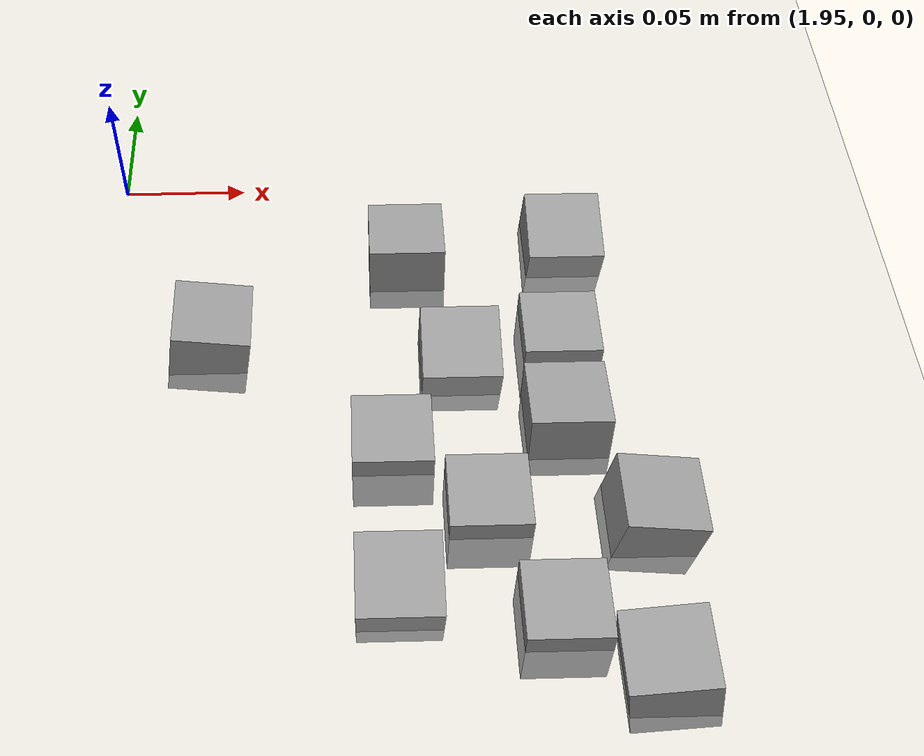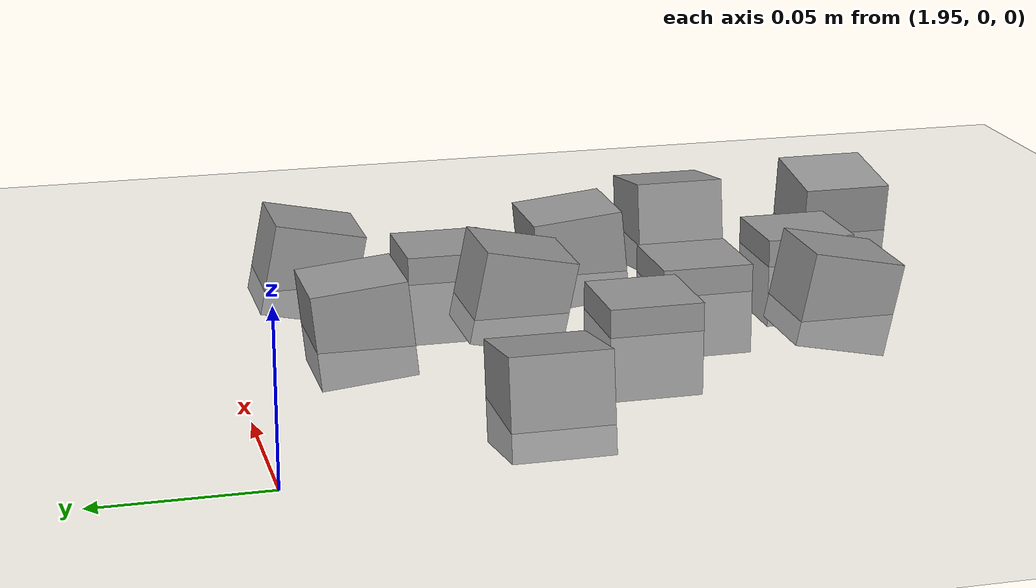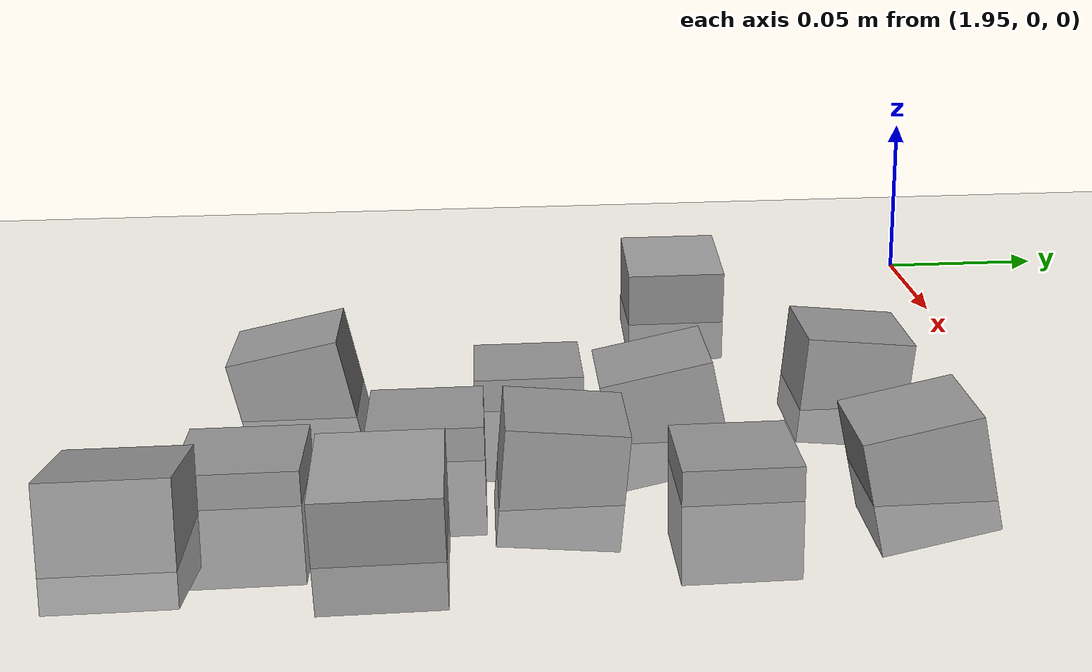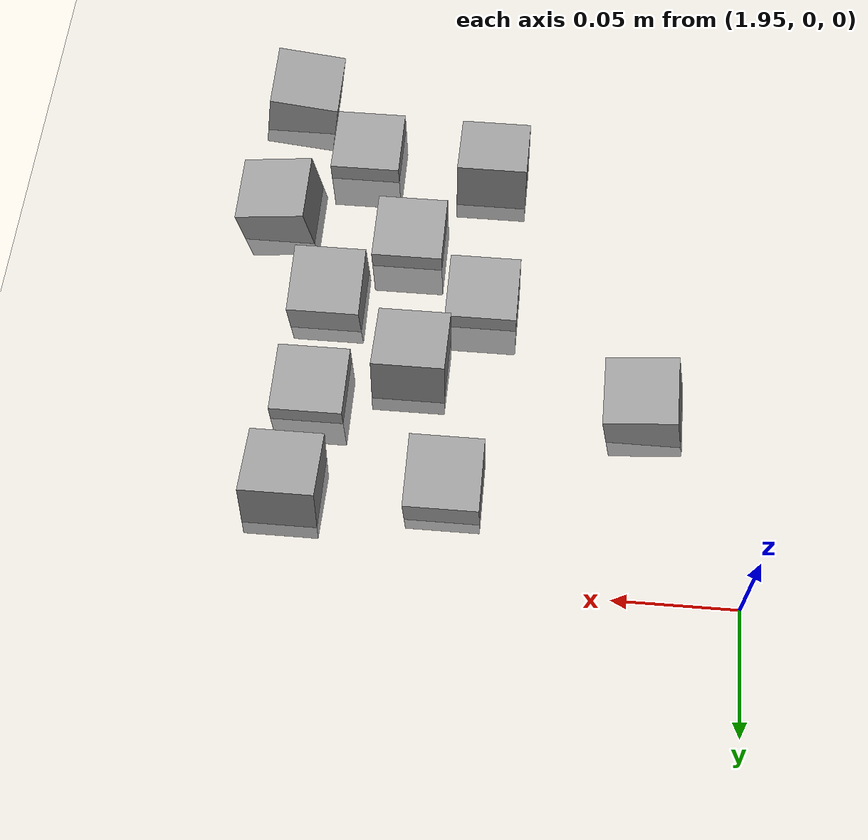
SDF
<sdf version="1.7">
 <world name="default">
  <model name="ground_plane">
   <static>1</static>
   <link name="link">
    <collision name="collision">
     <geometry><plane><normal>0 0 1</normal><size>100 100</size></plane></geometry>
     <surface><friction><ode><mu>100</mu><mu2>50</mu2></ode></friction></surface>
    </collision>
    <visual name="visual">
     <cast_shadows>0</cast_shadows>
     <geometry><plane><normal>0 0 1</normal><size>100 100</size></plane></geometry>
     <material>
      <script><uri>file://media/materials/scripts/gazebo.material</uri><name>Gazebo/Grey</name></script>
     </material>
    </visual>
   </link>
  </model>
  <model name="stone_road_4">
   <link name="link_0">
    <inertial>
     <mass>1</mass>
     <inertia>
      <ixx>0.166667</ixx>
      <ixy>0</ixy>
      <ixz>0</ixz>
      <iyy>0.166667</iyy>
      <iyz>0</iyz>
      <izz>0.166667</izz>
     </inertia>
    </inertial>
    <pose>-0.171827 0.03973 0.003778 0.2 -0 0</pose>
    <kinematic>1</kinematic>
    <visual name="visual">
     <geometry><box><size>0.03 0.03 0.03</size></box></geometry>
     <material>
      <lighting>1</lighting>
      <script><uri>file://media/materials/scripts/gazebo.material</uri><name>Gazebo/Grey</name></script>
      <shader type="pixel"><normal_map>__default__</normal_map></shader>
      <ambient>0.3 0.3 0.3 1</ambient>
      <diffuse>0.7 0.7 0.7 1</diffuse>
      <specular>0.01 0.01 0.01 1</specular>
      <emissive>0 0 0 1</emissive>
     </material>
    </visual>
    <collision name="collision">
     <geometry><box><size>0.03 0.03 0.03</size></box></geometry>
     <surface>
      <friction>
       <ode><mu>1</mu><mu2>1</mu2><fdir1>0 0 0</fdir1><slip1>0</slip1><slip2>0</slip2></ode>
       <torsional>
        <coefficient>1</coefficient>
        <patch_radius>0</patch_radius>
        <surface_radius>0</surface_radius>
        <use_patch_radius>1</use_patch_radius>
        <ode><slip>0</slip></ode>
       </torsional>
      </friction>
      <bounce><restitution_coefficient>0</restitution_coefficient><threshold>1e+06</threshold></bounce>
      <contact>
       <collide_without_contact>0</collide_without_contact>
       <collide_without_contact_bitmask>1</collide_without_contact_bitmask>
       <collide_bitmask>1</collide_bitmask>
       <ode>
        <soft_cfm>0</soft_cfm>
        <soft_erp>0.2</soft_erp>
        <kp>1e+13</kp>
        <kd>1</kd>
        <max_vel>0.01</max_vel>
        <min_depth>0</min_depth>
       </ode>
       <bullet>
        <split_impulse>1</split_impulse>
        <split_impulse_penetration_threshold>-0.01</split_impulse_penetration_threshold>
        <soft_cfm>0</soft_cfm>
        <soft_erp>0.2</soft_erp>
        <kp>1e+13</kp>
        <kd>1</kd>
       </bullet>
      </contact>
     </surface>
    </collision>
   </link>
   <link name="link_0_clone_2_clone">
    <inertial>
     <mass>1</mass>
     <inertia>
      <ixx>0.166667</ixx>
      <ixy>0</ixy>
      <ixz>0</ixz>
      <iyy>0.166667</iyy>
      <iyz>0</iyz>
      <izz>0.166667</izz>
     </inertia>
    </inertial>
    <pose>-0.10771 -0.03187 0.003778 0 0.15 0</pose>
    <kinematic>1</kinematic>
    <visual name="visual">
     <geometry><box><size>0.03 0.03 0.03</size></box></geometry>
     <material>
      <lighting>1</lighting>
      <script><uri>file://media/materials/scripts/gazebo.material</uri><name>Gazebo/Grey</name></script>
      <shader type="pixel"><normal_map>__default__</normal_map></shader>
      <ambient>0.3 0.3 0.3 1</ambient>
      <diffuse>0.7 0.7 0.7 1</diffuse>
      <specular>0.01 0.01 0.01 1</specular>
      <emissive>0 0 0 1</emissive>
     </material>
    </visual>
    <collision name="collision">
     <geometry><box><size>0.03 0.03 0.03</size></box></geometry>
     <surface>
      <friction>
       <ode><mu>1</mu><mu2>1</mu2><fdir1>0 0 0</fdir1><slip1>0</slip1><slip2>0</slip2></ode>
       <torsional>
        <coefficient>1</coefficient>
        <patch_radius>0</patch_radius>
        <surface_radius>0</surface_radius>
        <use_patch_radius>1</use_patch_radius>
        <ode><slip>0</slip></ode>
       </torsional>
      </friction>
      <bounce><restitution_coefficient>0</restitution_coefficient><threshold>1e+06</threshold></bounce>
      <contact>
       <collide_without_contact>0</collide_without_contact>
       <collide_without_contact_bitmask>1</collide_without_contact_bitmask>
       <collide_bitmask>1</collide_bitmask>
       <ode>
        <soft_cfm>0</soft_cfm>
        <soft_erp>0.2</soft_erp>
        <kp>1e+13</kp>
        <kd>1</kd>
        <max_vel>0.01</max_vel>
        <min_depth>0</min_depth>
       </ode>
       <bullet>
        <split_impulse>1</split_impulse>
        <split_impulse_penetration_threshold>-0.01</split_impulse_penetration_threshold>
        <soft_cfm>0</soft_cfm>
        <soft_erp>0.2</soft_erp>
        <kp>1e+13</kp>
        <kd>1</kd>
       </bullet>
      </contact>
     </surface>
    </collision>
   </link>
   <link name="link_0_clone_2_clone_2_clone_13_clone_clone_14">
    <inertial>
     <mass>1</mass>
     <inertia>
      <ixx>0.166667</ixx>
      <ixy>0</ixy>
      <ixz>0</ixz>
      <iyy>0.166667</iyy>
      <iyz>0</iyz>
      <izz>0.166667</izz>
     </inertia>
    </inertial>
    <pose>-0.190578 0.093923 0.003778 -0.1 0 0</pose>
    <kinematic>1</kinematic>
    <visual name="visual">
     <geometry><box><size>0.03 0.03 0.03</size></box></geometry>
     <material>
      <lighting>1</lighting>
      <script><uri>file://media/materials/scripts/gazebo.material</uri><name>Gazebo/Grey</name></script>
      <shader type="pixel"><normal_map>__default__</normal_map></shader>
      <ambient>0.3 0.3 0.3 1</ambient>
      <diffuse>0.7 0.7 0.7 1</diffuse>
      <specular>0.01 0.01 0.01 1</specular>
      <emissive>0 0 0 1</emissive>
     </material>
    </visual>
    <collision name="collision">
     <geometry><box><size>0.03 0.03 0.03</size></box></geometry>
     <surface>
      <friction>
       <ode><mu>1</mu><mu2>1</mu2><fdir1>0 0 0</fdir1><slip1>0</slip1><slip2>0</slip2></ode>
       <torsional>
        <coefficient>1</coefficient>
        <patch_radius>0</patch_radius>
        <surface_radius>0</surface_radius>
        <use_patch_radius>1</use_patch_radius>
        <ode><slip>0</slip></ode>
       </torsional>
      </friction>
      <bounce><restitution_coefficient>0</restitution_coefficient><threshold>1e+06</threshold></bounce>
      <contact>
       <collide_without_contact>0</collide_without_contact>
       <collide_without_contact_bitmask>1</collide_without_contact_bitmask>
       <collide_bitmask>1</collide_bitmask>
       <ode>
        <soft_cfm>0</soft_cfm>
        <soft_erp>0.2</soft_erp>
        <kp>1e+13</kp>
        <kd>1</kd>
        <max_vel>0.01</max_vel>
        <min_depth>0</min_depth>
       </ode>
       <bullet>
        <split_impulse>1</split_impulse>
        <split_impulse_penetration_threshold>-0.01</split_impulse_penetration_threshold>
        <soft_cfm>0</soft_cfm>
        <soft_erp>0.2</soft_erp>
        <kp>1e+13</kp>
        <kd>1</kd>
       </bullet>
      </contact>
     </surface>
    </collision>
   </link>
   <link name="link_0_clone_2_clone_2_clone_13_clone_clone_16_clone_11">
    <inertial>
     <mass>1</mass>
     <inertia>
      <ixx>0.166667</ixx>
      <ixy>0</ixy>
      <ixz>0</ixz>
      <iyy>0.166667</iyy>
      <iyz>0</iyz>
      <izz>0.166667</izz>
     </inertia>
    </inertial>
    <pose>-0.141844 -0.066911 -0.006222 0 -0 0</pose>
    <kinematic>1</kinematic>
    <visual name="visual">
     <geometry><box><size>0.03 0.03 0.03</size></box></geometry>
     <material>
      <lighting>1</lighting>
      <script><uri>file://media/materials/scripts/gazebo.material</uri><name>Gazebo/Grey</name></script>
      <shader type="pixel"><normal_map>__default__</normal_map></shader>
      <ambient>0.3 0.3 0.3 1</ambient>
      <diffuse>0.7 0.7 0.7 1</diffuse>
      <specular>0.01 0.01 0.01 1</specular>
      <emissive>0 0 0 1</emissive>
     </material>
    </visual>
    <collision name="collision">
     <geometry><box><size>0.03 0.03 0.03</size></box></geometry>
     <surface>
      <friction>
       <ode><mu>1</mu><mu2>1</mu2><fdir1>0 0 0</fdir1><slip1>0</slip1><slip2>0</slip2></ode>
       <torsional>
        <coefficient>1</coefficient>
        <patch_radius>0</patch_radius>
        <surface_radius>0</surface_radius>
        <use_patch_radius>1</use_patch_radius>
        <ode><slip>0</slip></ode>
       </torsional>
      </friction>
      <bounce><restitution_coefficient>0</restitution_coefficient><threshold>1e+06</threshold></bounce>
      <contact>
       <collide_without_contact>0</collide_without_contact>
       <collide_without_contact_bitmask>1</collide_without_contact_bitmask>
       <collide_bitmask>1</collide_bitmask>
       <ode>
        <soft_cfm>0</soft_cfm>
        <soft_erp>0.2</soft_erp>
        <kp>1e+13</kp>
        <kd>1</kd>
        <max_vel>0.01</max_vel>
        <min_depth>0</min_depth>
       </ode>
       <bullet>
        <split_impulse>1</split_impulse>
        <split_impulse_penetration_threshold>-0.01</split_impulse_penetration_threshold>
        <soft_cfm>0</soft_cfm>
        <soft_erp>0.2</soft_erp>
        <kp>1e+13</kp>
        <kd>1</kd>
       </bullet>
      </contact>
     </surface>
    </collision>
   </link>
   <link name="link_0_clone_2_clone_2_clone_13_clone_clone_16_clone_12">
    <inertial>
     <mass>1</mass>
     <inertia>
      <ixx>0.166667</ixx>
      <ixy>0</ixy>
      <ixz>0</ixz>
      <iyy>0.166667</iyy>
      <iyz>0</iyz>
      <izz>0.166667</izz>
     </inertia>
    </inertial>
    <pose>-0.164908 -0.022947 -0.006222 0 -0 0</pose>
    <kinematic>1</kinematic>
    <visual name="visual">
     <geometry><box><size>0.03 0.03 0.03</size></box></geometry>
     <material>
      <lighting>1</lighting>
      <script><uri>file://media/materials/scripts/gazebo.material</uri><name>Gazebo/Grey</name></script>
      <shader type="pixel"><normal_map>__default__</normal_map></shader>
      <ambient>0.3 0.3 0.3 1</ambient>
      <diffuse>0.7 0.7 0.7 1</diffuse>
      <specular>0.01 0.01 0.01 1</specular>
      <emissive>0 0 0 1</emissive>
     </material>
    </visual>
    <collision name="collision">
     <geometry><box><size>0.03 0.03 0.03</size></box></geometry>
     <surface>
      <friction>
       <ode><mu>1</mu><mu2>1</mu2><fdir1>0 0 0</fdir1><slip1>0</slip1><slip2>0</slip2></ode>
       <torsional>
        <coefficient>1</coefficient>
        <patch_radius>0</patch_radius>
        <surface_radius>0</surface_radius>
        <use_patch_radius>1</use_patch_radius>
        <ode><slip>0</slip></ode>
       </torsional>
      </friction>
      <bounce><restitution_coefficient>0</restitution_coefficient><threshold>1e+06</threshold></bounce>
      <contact>
       <collide_without_contact>0</collide_without_contact>
       <collide_without_contact_bitmask>1</collide_without_contact_bitmask>
       <collide_bitmask>1</collide_bitmask>
       <ode>
        <soft_cfm>0</soft_cfm>
        <soft_erp>0.2</soft_erp>
        <kp>1e+13</kp>
        <kd>1</kd>
        <max_vel>0.01</max_vel>
        <min_depth>0</min_depth>
       </ode>
       <bullet>
        <split_impulse>1</split_impulse>
        <split_impulse_penetration_threshold>-0.01</split_impulse_penetration_threshold>
        <soft_cfm>0</soft_cfm>
        <soft_erp>0.2</soft_erp>
        <kp>1e+13</kp>
        <kd>1</kd>
       </bullet>
      </contact>
     </surface>
    </collision>
   </link>
   <link name="link_0_clone_2_clone_2_clone_13_clone_clone_16_clone_31">
    <inertial>
     <mass>1</mass>
     <inertia>
      <ixx>0.166667</ixx>
      <ixy>0</ixy>
      <ixz>0</ixz>
      <iyy>0.166667</iyy>
      <iyz>0</iyz>
      <izz>0.166667</izz>
     </inertia>
    </inertial>
    <pose>-0.198811 0.004584 -0.006222 0 -0 0</pose>
    <kinematic>1</kinematic>
    <visual name="visual">
     <geometry><box><size>0.03 0.03 0.03</size></box></geometry>
     <material>
      <lighting>1</lighting>
      <script><uri>file://media/materials/scripts/gazebo.material</uri><name>Gazebo/Grey</name></script>
      <shader type="pixel"><normal_map>__default__</normal_map></shader>
      <ambient>0.3 0.3 0.3 1</ambient>
      <diffuse>0.7 0.7 0.7 1</diffuse>
      <specular>0.01 0.01 0.01 1</specular>
      <emissive>0 0 0 1</emissive>
     </material>
    </visual>
    <collision name="collision">
     <geometry><box><size>0.03 0.03 0.03</size></box></geometry>
     <surface>
      <friction>
       <ode><mu>1</mu><mu2>1</mu2><fdir1>0 0 0</fdir1><slip1>0</slip1><slip2>0</slip2></ode>
       <torsional>
        <coefficient>1</coefficient>
        <patch_radius>0</patch_radius>
        <surface_radius>0</surface_radius>
        <use_patch_radius>1</use_patch_radius>
        <ode><slip>0</slip></ode>
       </torsional>
      </friction>
      <bounce><restitution_coefficient>0</restitution_coefficient><threshold>1e+06</threshold></bounce>
      <contact>
       <collide_without_contact>0</collide_without_contact>
       <collide_without_contact_bitmask>1</collide_without_contact_bitmask>
       <collide_bitmask>1</collide_bitmask>
       <ode>
        <soft_cfm>0</soft_cfm>
        <soft_erp>0.2</soft_erp>
        <kp>1e+13</kp>
        <kd>1</kd>
        <max_vel>0.01</max_vel>
        <min_depth>0</min_depth>
       </ode>
       <bullet>
        <split_impulse>1</split_impulse>
        <split_impulse_penetration_threshold>-0.01</split_impulse_penetration_threshold>
        <soft_cfm>0</soft_cfm>
        <soft_erp>0.2</soft_erp>
        <kp>1e+13</kp>
        <kd>1</kd>
       </bullet>
      </contact>
     </surface>
    </collision>
   </link>
   <link name="link_0_clone_2_clone_2_clone_13_clone_clone_16_clone_4">
    <inertial>
     <mass>1</mass>
     <inertia>
      <ixx>0.166667</ixx>
      <ixy>0</ixy>
      <ixz>0</ixz>
      <iyy>0.166667</iyy>
      <iyz>0</iyz>
      <izz>0.166667</izz>
     </inertia>
    </inertial>
    <pose>-0.131411 0.053677 -0.006222 0 -0 0</pose>
    <kinematic>1</kinematic>
    <visual name="visual">
     <geometry><box><size>0.03 0.03 0.03</size></box></geometry>
     <material>
      <lighting>1</lighting>
      <script><uri>file://media/materials/scripts/gazebo.material</uri><name>Gazebo/Grey</name></script>
      <shader type="pixel"><normal_map>__default__</normal_map></shader>
      <ambient>0.3 0.3 0.3 1</ambient>
      <diffuse>0.7 0.7 0.7 1</diffuse>
      <specular>0.01 0.01 0.01 1</specular>
      <emissive>0 0 0 1</emissive>
     </material>
    </visual>
    <collision name="collision">
     <geometry><box><size>0.03 0.03 0.03</size></box></geometry>
     <surface>
      <friction>
       <ode><mu>1</mu><mu2>1</mu2><fdir1>0 0 0</fdir1><slip1>0</slip1><slip2>0</slip2></ode>
       <torsional>
        <coefficient>1</coefficient>
        <patch_radius>0</patch_radius>
        <surface_radius>0</surface_radius>
        <use_patch_radius>1</use_patch_radius>
        <ode><slip>0</slip></ode>
       </torsional>
      </friction>
      <bounce><restitution_coefficient>0</restitution_coefficient><threshold>1e+06</threshold></bounce>
      <contact>
       <collide_without_contact>0</collide_without_contact>
       <collide_without_contact_bitmask>1</collide_without_contact_bitmask>
       <collide_bitmask>1</collide_bitmask>
       <ode>
        <soft_cfm>0</soft_cfm>
        <soft_erp>0.2</soft_erp>
        <kp>1e+13</kp>
        <kd>1</kd>
        <max_vel>0.01</max_vel>
        <min_depth>0</min_depth>
       </ode>
       <bullet>
        <split_impulse>1</split_impulse>
        <split_impulse_penetration_threshold>-0.01</split_impulse_penetration_threshold>
        <soft_cfm>0</soft_cfm>
        <soft_erp>0.2</soft_erp>
        <kp>1e+13</kp>
        <kd>1</kd>
       </bullet>
      </contact>
     </surface>
    </collision>
   </link>
   <link name="link_0_clone_2_clone_2_clone_13_clone_clone_7">
    <inertial>
     <mass>1</mass>
     <inertia>
      <ixx>0.166667</ixx>
      <ixy>0</ixy>
      <ixz>0</ixz>
      <iyy>0.166667</iyy>
      <iyz>0</iyz>
      <izz>0.166667</izz>
     </inertia>
    </inertial>
    <pose>-0.133876 0.010561 0.003778 -0.1 0 0</pose>
    <kinematic>1</kinematic>
    <visual name="visual">
     <geometry><box><size>0.03 0.03 0.03</size></box></geometry>
     <material>
      <lighting>1</lighting>
      <script><uri>file://media/materials/scripts/gazebo.material</uri><name>Gazebo/Grey</name></script>
      <shader type="pixel"><normal_map>__default__</normal_map></shader>
      <ambient>0.3 0.3 0.3 1</ambient>
      <diffuse>0.7 0.7 0.7 1</diffuse>
      <specular>0.01 0.01 0.01 1</specular>
      <emissive>0 0 0 1</emissive>
     </material>
    </visual>
    <collision name="collision">
     <geometry><box><size>0.03 0.03 0.03</size></box></geometry>
     <surface>
      <friction>
       <ode><mu>1</mu><mu2>1</mu2><fdir1>0 0 0</fdir1><slip1>0</slip1><slip2>0</slip2></ode>
       <torsional>
        <coefficient>1</coefficient>
        <patch_radius>0</patch_radius>
        <surface_radius>0</surface_radius>
        <use_patch_radius>1</use_patch_radius>
        <ode><slip>0</slip></ode>
       </torsional>
      </friction>
      <bounce><restitution_coefficient>0</restitution_coefficient><threshold>1e+06</threshold></bounce>
      <contact>
       <collide_without_contact>0</collide_without_contact>
       <collide_without_contact_bitmask>1</collide_without_contact_bitmask>
       <collide_bitmask>1</collide_bitmask>
       <ode>
        <soft_cfm>0</soft_cfm>
        <soft_erp>0.2</soft_erp>
        <kp>1e+13</kp>
        <kd>1</kd>
        <max_vel>0.01</max_vel>
        <min_depth>0</min_depth>
       </ode>
       <bullet>
        <split_impulse>1</split_impulse>
        <split_impulse_penetration_threshold>-0.01</split_impulse_penetration_threshold>
        <soft_cfm>0</soft_cfm>
        <soft_erp>0.2</soft_erp>
        <kp>1e+13</kp>
        <kd>1</kd>
       </bullet>
      </contact>
     </surface>
    </collision>
   </link>
   <link name="link_0_clone_2_clone_2_clone_3">
    <inertial>
     <mass>1</mass>
     <inertia>
      <ixx>0.166667</ixx>
      <ixy>0</ixy>
      <ixz>0</ixz>
      <iyy>0.166667</iyy>
      <iyz>0</iyz>
      <izz>0.166667</izz>
     </inertia>
    </inertial>
    <pose>-0.110514 -0.090915 0.003778 0 -0.15 0</pose>
    <kinematic>1</kinematic>
    <visual name="visual">
     <geometry><box><size>0.03 0.03 0.03</size></box></geometry>
     <material>
      <lighting>1</lighting>
      <script><uri>file://media/materials/scripts/gazebo.material</uri><name>Gazebo/Grey</name></script>
      <shader type="pixel"><normal_map>__default__</normal_map></shader>
      <ambient>0.3 0.3 0.3 1</ambient>
      <diffuse>0.7 0.7 0.7 1</diffuse>
      <specular>0.01 0.01 0.01 1</specular>
      <emissive>0 0 0 1</emissive>
     </material>
    </visual>
    <collision name="collision">
     <geometry><box><size>0.03 0.03 0.03</size></box></geometry>
     <surface>
      <friction>
       <ode><mu>1</mu><mu2>1</mu2><fdir1>0 0 0</fdir1><slip1>0</slip1><slip2>0</slip2></ode>
       <torsional>
        <coefficient>1</coefficient>
        <patch_radius>0</patch_radius>
        <surface_radius>0</surface_radius>
        <use_patch_radius>1</use_patch_radius>
        <ode><slip>0</slip></ode>
       </torsional>
      </friction>
      <bounce><restitution_coefficient>0</restitution_coefficient><threshold>1e+06</threshold></bounce>
      <contact>
       <collide_without_contact>0</collide_without_contact>
       <collide_without_contact_bitmask>1</collide_without_contact_bitmask>
       <collide_bitmask>1</collide_bitmask>
       <ode>
        <soft_cfm>0</soft_cfm>
        <soft_erp>0.2</soft_erp>
        <kp>1e+13</kp>
        <kd>1</kd>
        <max_vel>0.01</max_vel>
        <min_depth>0</min_depth>
       </ode>
       <bullet>
        <split_impulse>1</split_impulse>
        <split_impulse_penetration_threshold>-0.01</split_impulse_penetration_threshold>
        <soft_cfm>0</soft_cfm>
        <soft_erp>0.2</soft_erp>
        <kp>1e+13</kp>
        <kd>1</kd>
       </bullet>
      </contact>
     </surface>
    </collision>
   </link>
   <link name="link_0_clone_2_clone_5">
    <inertial>
     <mass>1</mass>
     <inertia>
      <ixx>0.166667</ixx>
      <ixy>0</ixy>
      <ixz>0</ixz>
      <iyy>0.166667</iyy>
      <iyz>0</iyz>
      <izz>0.166667</izz>
     </inertia>
    </inertial>
    <pose>-0.268485 0.053169 0.003778 0 0.15 0</pose>
    <kinematic>1</kinematic>
    <visual name="visual">
     <geometry><box><size>0.03 0.03 0.03</size></box></geometry>
     <material>
      <lighting>1</lighting>
      <script><uri>file://media/materials/scripts/gazebo.material</uri><name>Gazebo/Grey</name></script>
      <shader type="pixel"><normal_map>__default__</normal_map></shader>
      <ambient>0.3 0.3 0.3 1</ambient>
      <diffuse>0.7 0.7 0.7 1</diffuse>
      <specular>0.01 0.01 0.01 1</specular>
      <emissive>0 0 0 1</emissive>
     </material>
    </visual>
    <collision name="collision">
     <geometry><box><size>0.03 0.03 0.03</size></box></geometry>
     <surface>
      <friction>
       <ode><mu>1</mu><mu2>1</mu2><fdir1>0 0 0</fdir1><slip1>0</slip1><slip2>0</slip2></ode>
       <torsional>
        <coefficient>1</coefficient>
        <patch_radius>0</patch_radius>
        <surface_radius>0</surface_radius>
        <use_patch_radius>1</use_patch_radius>
        <ode><slip>0</slip></ode>
       </torsional>
      </friction>
      <bounce><restitution_coefficient>0</restitution_coefficient><threshold>1e+06</threshold></bounce>
      <contact>
       <collide_without_contact>0</collide_without_contact>
       <collide_without_contact_bitmask>1</collide_without_contact_bitmask>
       <collide_bitmask>1</collide_bitmask>
       <ode>
        <soft_cfm>0</soft_cfm>
        <soft_erp>0.2</soft_erp>
        <kp>1e+13</kp>
        <kd>1</kd>
        <max_vel>0.01</max_vel>
        <min_depth>0</min_depth>
       </ode>
       <bullet>
        <split_impulse>1</split_impulse>
        <split_impulse_penetration_threshold>-0.01</split_impulse_penetration_threshold>
        <soft_cfm>0</soft_cfm>
        <soft_erp>0.2</soft_erp>
        <kp>1e+13</kp>
        <kd>1</kd>
       </bullet>
      </contact>
     </surface>
    </collision>
   </link>
   <link name="link_0_clone_3">
    <inertial>
     <mass>1</mass>
     <inertia>
      <ixx>0.166667</ixx>
      <ixy>0</ixy>
      <ixz>0</ixz>
      <iyy>0.166667</iyy>
      <iyz>0</iyz>
      <izz>0.166667</izz>
     </inertia>
    </inertial>
    <pose>-0.126666 0.098861 0.003778 0.2 -0 0</pose>
    <kinematic>1</kinematic>
    <visual name="visual">
     <geometry><box><size>0.03 0.03 0.03</size></box></geometry>
     <material>
      <lighting>1</lighting>
      <script><uri>file://media/materials/scripts/gazebo.material</uri><name>Gazebo/Grey</name></script>
      <shader type="pixel"><normal_map>__default__</normal_map></shader>
      <ambient>0.3 0.3 0.3 1</ambient>
      <diffuse>0.7 0.7 0.7 1</diffuse>
      <specular>0.01 0.01 0.01 1</specular>
      <emissive>0 0 0 1</emissive>
     </material>
    </visual>
    <collision name="collision">
     <geometry><box><size>0.03 0.03 0.03</size></box></geometry>
     <surface>
      <friction>
       <ode><mu>1</mu><mu2>1</mu2><fdir1>0 0 0</fdir1><slip1>0</slip1><slip2>0</slip2></ode>
       <torsional>
        <coefficient>1</coefficient>
        <patch_radius>0</patch_radius>
        <surface_radius>0</surface_radius>
        <use_patch_radius>1</use_patch_radius>
        <ode><slip>0</slip></ode>
       </torsional>
      </friction>
      <bounce><restitution_coefficient>0</restitution_coefficient><threshold>1e+06</threshold></bounce>
      <contact>
       <collide_without_contact>0</collide_without_contact>
       <collide_without_contact_bitmask>1</collide_without_contact_bitmask>
       <collide_bitmask>1</collide_bitmask>
       <ode>
        <soft_cfm>0</soft_cfm>
        <soft_erp>0.2</soft_erp>
        <kp>1e+13</kp>
        <kd>1</kd>
        <max_vel>0.01</max_vel>
        <min_depth>0</min_depth>
       </ode>
       <bullet>
        <split_impulse>1</split_impulse>
        <split_impulse_penetration_threshold>-0.01</split_impulse_penetration_threshold>
        <soft_cfm>0</soft_cfm>
        <soft_erp>0.2</soft_erp>
        <kp>1e+13</kp>
        <kd>1</kd>
       </bullet>
      </contact>
     </surface>
    </collision>
   </link>
   <link name="link_0_clone_6">
    <inertial>
     <mass>1</mass>
     <inertia>
      <ixx>0.166667</ixx>
      <ixy>0</ixy>
      <ixz>0</ixz>
      <iyy>0.166667</iyy>
      <iyz>0</iyz>
      <izz>0.166667</izz>
     </inertia>
    </inertial>
    <pose>-0.198423 -0.058498 0.003778 0.2 -0 0</pose>
    <kinematic>1</kinematic>
    <visual name="visual">
     <geometry><box><size>0.03 0.03 0.03</size></box></geometry>
     <material>
      <lighting>1</lighting>
      <script><uri>file://media/materials/scripts/gazebo.material</uri><name>Gazebo/Grey</name></script>
      <shader type="pixel"><normal_map>__default__</normal_map></shader>
      <ambient>0.3 0.3 0.3 1</ambient>
      <diffuse>0.7 0.7 0.7 1</diffuse>
      <specular>0.01 0.01 0.01 1</specular>
      <emissive>0 0 0 1</emissive>
     </material>
    </visual>
    <collision name="collision">
     <geometry><box><size>0.03 0.03 0.03</size></box></geometry>
     <surface>
      <friction>
       <ode><mu>1</mu><mu2>1</mu2><fdir1>0 0 0</fdir1><slip1>0</slip1><slip2>0</slip2></ode>
       <torsional>
        <coefficient>1</coefficient>
        <patch_radius>0</patch_radius>
        <surface_radius>0</surface_radius>
        <use_patch_radius>1</use_patch_radius>
        <ode><slip>0</slip></ode>
       </torsional>
      </friction>
      <bounce><restitution_coefficient>0</restitution_coefficient><threshold>1e+06</threshold></bounce>
      <contact>
       <collide_without_contact>0</collide_without_contact>
       <collide_without_contact_bitmask>1</collide_without_contact_bitmask>
       <collide_bitmask>1</collide_bitmask>
       <ode>
        <soft_cfm>0</soft_cfm>
        <soft_erp>0.2</soft_erp>
        <kp>1e+13</kp>
        <kd>1</kd>
        <max_vel>0.01</max_vel>
        <min_depth>0</min_depth>
       </ode>
       <bullet>
        <split_impulse>1</split_impulse>
        <split_impulse_penetration_threshold>-0.01</split_impulse_penetration_threshold>
        <soft_cfm>0</soft_cfm>
        <soft_erp>0.2</soft_erp>
        <kp>1e+13</kp>
        <kd>1</kd>
       </bullet>
      </contact>
     </surface>
    </collision>
   </link>
   <static>0</static>
   <pose>2.25857 -0.135925 -0 0 -0 0</pose>
  </model>
 </world>
</sdf>
